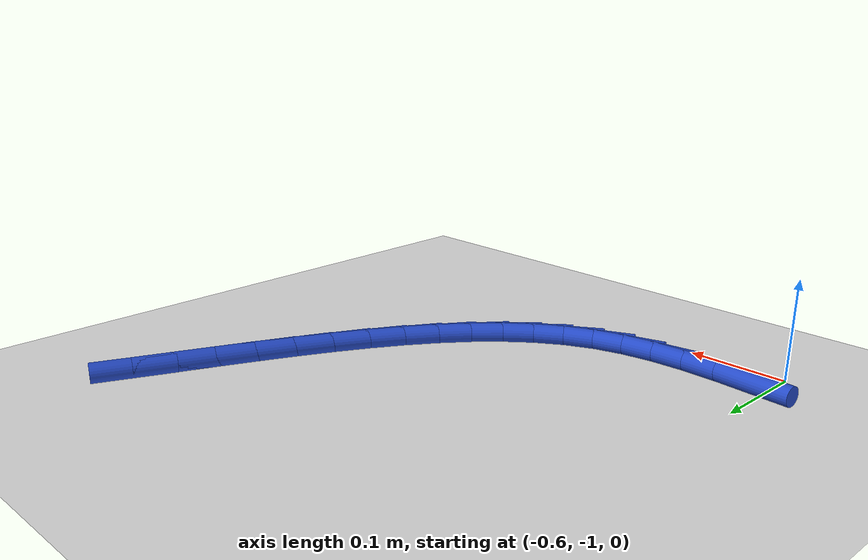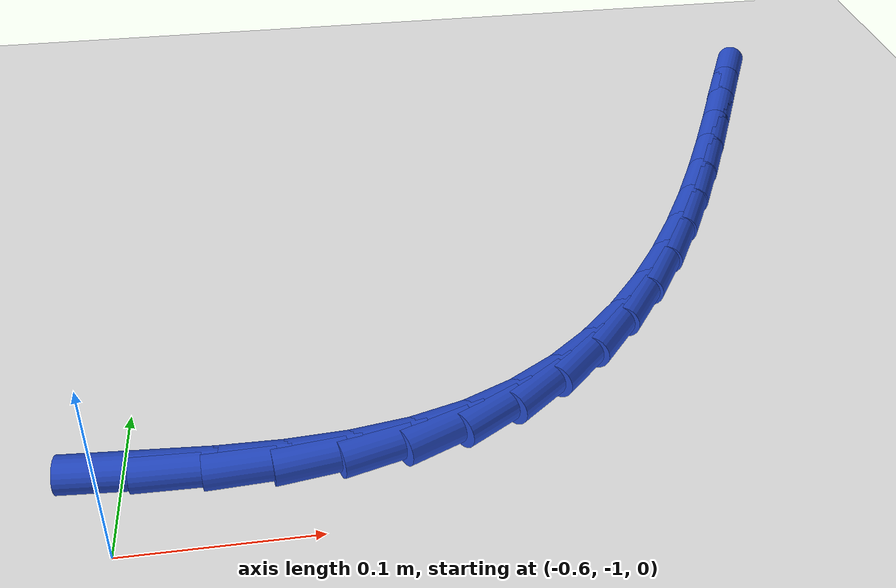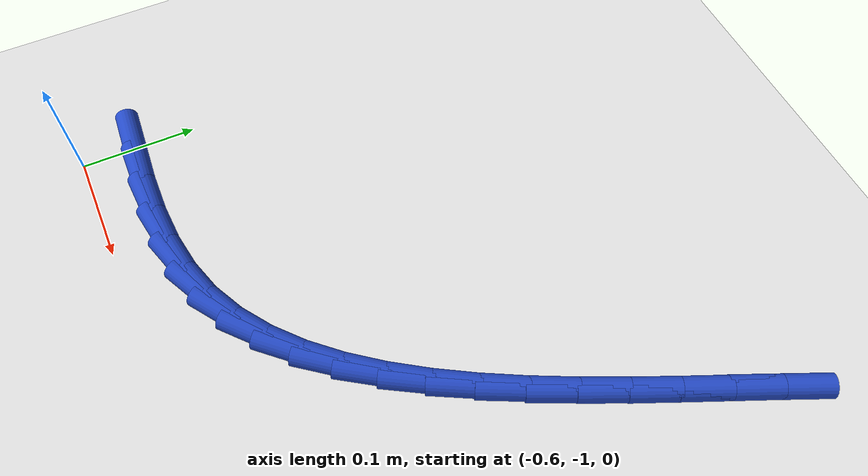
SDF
<sdf version="1.6">
 <world name="default">
  <model name="ground_plane">
   <static>1</static>
   <link name="link">
    <collision name="collision">
     <geometry><plane><normal>0 0 1</normal><size>100 100</size></plane></geometry>
     <surface><friction><ode><mu>100</mu><mu2>50</mu2></ode></friction></surface>
    </collision>
    <visual name="visual">
     <cast_shadows>0</cast_shadows>
     <geometry><plane><normal>0 0 1</normal><size>100 100</size></plane></geometry>
     <material>
      <script><uri>file://media/materials/scripts/gazebo.material</uri><name>Gazebo/WhiteGlow</name></script>
     </material>
    </visual>
   </link>
  </model>
  <model name="line">
   <link name="link_195">
    <pose>-0.5905462138042206 -0.9530189587478108 0.01 0 1.57 -0.0664744614690393</pose>
    <collision name="collision">
     <geometry><cylinder><radius>0.01</radius><length>0.08</length></cylinder></geometry>
    </collision>
    <visual name="visual">
     <material>
      <script><name>Gazebo/Blue</name><uri>file://media/materials/scripts/gazebo.material</uri></script>
     </material>
     <geometry><cylinder><radius>0.01</radius><length>0.08</length></cylinder></geometry>
    </visual>
   </link>
   <link name="link_196">
    <pose>-0.5543591483406474 -0.9554280239181985 0.01 0 1.57 -0.014381675441094668</pose>
    <collision name="collision">
     <geometry><cylinder><radius>0.01</radius><length>0.08</length></cylinder></geometry>
    </collision>
    <visual name="visual">
     <material>
      <script><name>Gazebo/Blue</name><uri>file://media/materials/scripts/gazebo.material</uri></script>
     </material>
     <geometry><cylinder><radius>0.01</radius><length>0.08</length></cylinder></geometry>
    </visual>
   </link>
   <link name="link_197">
    <pose>-0.5192279653464408 -0.9559333040264941 0.01 0 1.57 0.06125485688035737</pose>
    <collision name="collision">
     <geometry><cylinder><radius>0.01</radius><length>0.08</length></cylinder></geometry>
    </collision>
    <visual name="visual">
     <material>
      <script><name>Gazebo/Blue</name><uri>file://media/materials/scripts/gazebo.material</uri></script>
     </material>
     <geometry><cylinder><radius>0.01</radius><length>0.08</length></cylinder></geometry>
    </visual>
   </link>
   <link name="link_198">
    <pose>-0.48545622192935867 -0.9538620294858692 0.01 0 1.57 0.16421342894169336</pose>
    <collision name="collision">
     <geometry><cylinder><radius>0.01</radius><length>0.08</length></cylinder></geometry>
    </collision>
    <visual name="visual">
     <material>
      <script><name>Gazebo/Blue</name><uri>file://media/materials/scripts/gazebo.material</uri></script>
     </material>
     <geometry><cylinder><radius>0.01</radius><length>0.08</length></cylinder></geometry>
    </visual>
   </link>
   <link name="link_199">
    <pose>-0.4533474751971564 -0.9485414307094954 0.01 0 1.57 0.29741747178593686</pose>
    <collision name="collision">
     <geometry><cylinder><radius>0.01</radius><length>0.08</length></cylinder></geometry>
    </collision>
    <visual name="visual">
     <material>
      <script><name>Gazebo/Blue</name><uri>file://media/materials/scripts/gazebo.material</uri></script>
     </material>
     <geometry><cylinder><radius>0.01</radius><length>0.08</length></cylinder></geometry>
    </visual>
   </link>
   <link name="link_200">
    <pose>-0.4232037818216879 -0.939302121782394 0.01 0 1.57 0.44833867163212704</pose>
    <collision name="collision">
     <geometry><cylinder><radius>0.01</radius><length>0.08</length></cylinder></geometry>
    </collision>
    <visual name="visual">
     <material>
      <script><name>Gazebo/Blue</name><uri>file://media/materials/scripts/gazebo.material</uri></script>
     </material>
     <geometry><cylinder><radius>0.01</radius><length>0.08</length></cylinder></geometry>
    </visual>
   </link>
   <link name="link_201">
    <pose>-0.3951742259797911 -0.9258196890237272 0.01 0 1.57 0.5892242069629884</pose>
    <collision name="collision">
     <geometry><cylinder><radius>0.01</radius><length>0.08</length></cylinder></geometry>
    </collision>
    <visual name="visual">
     <material>
      <script><name>Gazebo/Blue</name><uri>file://media/materials/scripts/gazebo.material</uri></script>
     </material>
     <geometry><cylinder><radius>0.01</radius><length>0.08</length></cylinder></geometry>
    </visual>
   </link>
   <link name="link_202">
    <pose>-0.36912504770110843 -0.9084075679121549 0.01 0 1.57 0.7130839908502759</pose>
    <collision name="collision">
     <geometry><cylinder><radius>0.01</radius><length>0.08</length></cylinder></geometry>
    </collision>
    <visual name="visual">
     <material>
      <script><name>Gazebo/Blue</name><uri>file://media/materials/scripts/gazebo.material</uri></script>
     </material>
     <geometry><cylinder><radius>0.01</radius><length>0.08</length></cylinder></geometry>
    </visual>
   </link>
   <link name="link_203">
    <pose>-0.3448918944143784 -0.8874481840927084 0.01 0 1.57 0.8184172436246226</pose>
    <collision name="collision">
     <geometry><cylinder><radius>0.01</radius><length>0.08</length></cylinder></geometry>
    </collision>
    <visual name="visual">
     <material>
      <script><name>Gazebo/Blue</name><uri>file://media/materials/scripts/gazebo.material</uri></script>
     </material>
     <geometry><cylinder><radius>0.01</radius><length>0.08</length></cylinder></geometry>
    </visual>
   </link>
   <link name="link_204">
    <pose>-0.32231041354833967 -0.8633239632104184 0.01 0 1.57 0.9059026110703041</pose>
    <collision name="collision">
     <geometry><cylinder><radius>0.01</radius><length>0.08</length></cylinder></geometry>
    </collision>
    <visual name="visual">
     <material>
      <script><name>Gazebo/Blue</name><uri>file://media/materials/scripts/gazebo.material</uri></script>
     </material>
     <geometry><cylinder><radius>0.01</radius><length>0.08</length></cylinder></geometry>
    </visual>
   </link>
   <link name="link_205">
    <pose>-0.30121625253173123 -0.8364173309103153 0.01 0 1.57 0.9772992488634794</pose>
    <collision name="collision">
     <geometry><cylinder><radius>0.01</radius><length>0.08</length></cylinder></geometry>
    </collision>
    <visual name="visual">
     <material>
      <script><name>Gazebo/Blue</name><uri>file://media/materials/scripts/gazebo.material</uri></script>
     </material>
     <geometry><cylinder><radius>0.01</radius><length>0.08</length></cylinder></geometry>
    </visual>
   </link>
   <link name="link_206">
    <pose>-0.2814450587932915 -0.8071107128374302 0.01 0 1.57 1.0346582901401111</pose>
    <collision name="collision">
     <geometry><cylinder><radius>0.01</radius><length>0.08</length></cylinder></geometry>
    </collision>
    <visual name="visual">
     <material>
      <script><name>Gazebo/Blue</name><uri>file://media/materials/scripts/gazebo.material</uri></script>
     </material>
     <geometry><cylinder><radius>0.01</radius><length>0.08</length></cylinder></geometry>
    </visual>
   </link>
   <link name="link_207">
    <pose>-0.26283247976176044 -0.7757865346367954 0.01 0 1.57 1.079894222376767</pose>
    <collision name="collision">
     <geometry><cylinder><radius>0.01</radius><length>0.08</length></cylinder></geometry>
    </collision>
    <visual name="visual">
     <material>
      <script><name>Gazebo/Blue</name><uri>file://media/materials/scripts/gazebo.material</uri></script>
     </material>
     <geometry><cylinder><radius>0.01</radius><length>0.08</length></cylinder></geometry>
    </visual>
   </link>
   <link name="link_208">
    <pose>-0.24521416286587658 -0.7428272219534411 0.01 0 1.57 1.114602969959631</pose>
    <collision name="collision">
     <geometry><cylinder><radius>0.01</radius><length>0.08</length></cylinder></geometry>
    </collision>
    <visual name="visual">
     <material>
      <script><name>Gazebo/Blue</name><uri>file://media/materials/scripts/gazebo.material</uri></script>
     </material>
     <geometry><cylinder><radius>0.01</radius><length>0.08</length></cylinder></geometry>
    </visual>
   </link>
   <link name="link_209">
    <pose>-0.22842575553437866 -0.7086152004323983 0.01 0 1.57 1.1400107683706777</pose>
    <collision name="collision">
     <geometry><cylinder><radius>0.01</radius><length>0.08</length></cylinder></geometry>
    </collision>
    <visual name="visual">
     <material>
      <script><name>Gazebo/Blue</name><uri>file://media/materials/scripts/gazebo.material</uri></script>
     </material>
     <geometry><cylinder><radius>0.01</radius><length>0.08</length></cylinder></geometry>
    </visual>
   </link>
   <link name="link_210">
    <pose>-0.21230290519600536 -0.6735328957186976 0.01 0 1.57 1.1569780227912776</pose>
    <collision name="collision">
     <geometry><cylinder><radius>0.01</radius><length>0.08</length></cylinder></geometry>
    </collision>
    <visual name="visual">
     <material>
      <script><name>Gazebo/Blue</name><uri>file://media/materials/scripts/gazebo.material</uri></script>
     </material>
     <geometry><cylinder><radius>0.01</radius><length>0.08</length></cylinder></geometry>
    </visual>
   </link>
   <link name="link_211">
    <pose>-0.19668125927949634 -0.637962733457371 0.01 0 1.57 1.1660169419991882</pose>
    <collision name="collision">
     <geometry><cylinder><radius>0.01</radius><length>0.08</length></cylinder></geometry>
    </collision>
    <visual name="visual">
     <material>
      <script><name>Gazebo/Blue</name><uri>file://media/materials/scripts/gazebo.material</uri></script>
     </material>
     <geometry><cylinder><radius>0.01</radius><length>0.08</length></cylinder></geometry>
    </visual>
   </link>
   <link name="link_212">
    <pose>-0.18139646521359024 -0.6022871392934495 0.01 0 1.57 1.1673023556875453</pose>
    <collision name="collision">
     <geometry><cylinder><radius>0.01</radius><length>0.08</length></cylinder></geometry>
    </collision>
    <visual name="visual">
     <material>
      <script><name>Gazebo/Blue</name><uri>file://media/materials/scripts/gazebo.material</uri></script>
     </material>
     <geometry><cylinder><radius>0.01</radius><length>0.08</length></cylinder></geometry>
    </visual>
   </link>
   <link name="link_213">
    <pose>-0.16628417042702584 -0.5668885388719636 0.01 0 1.57 1.1606652017233596</pose>
    <collision name="collision">
     <geometry><cylinder><radius>0.01</radius><length>0.08</length></cylinder></geometry>
    </collision>
    <visual name="visual">
     <material>
      <script><name>Gazebo/Blue</name><uri>file://media/materials/scripts/gazebo.material</uri></script>
     </material>
     <geometry><cylinder><radius>0.01</radius><length>0.08</length></cylinder></geometry>
    </visual>
   </link>
  </model>
 </world>
</sdf>
